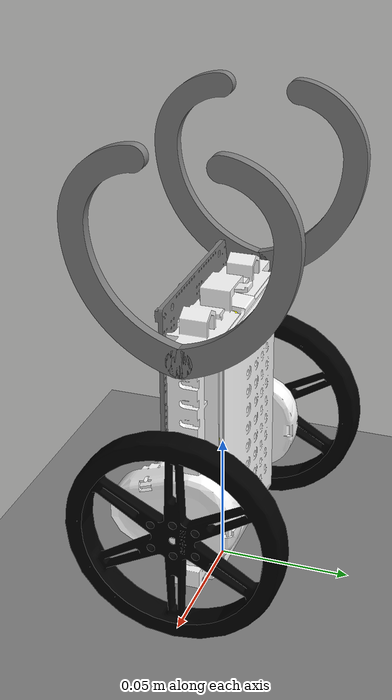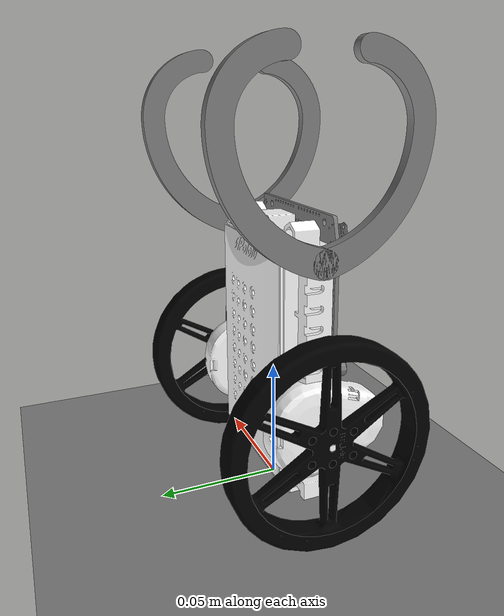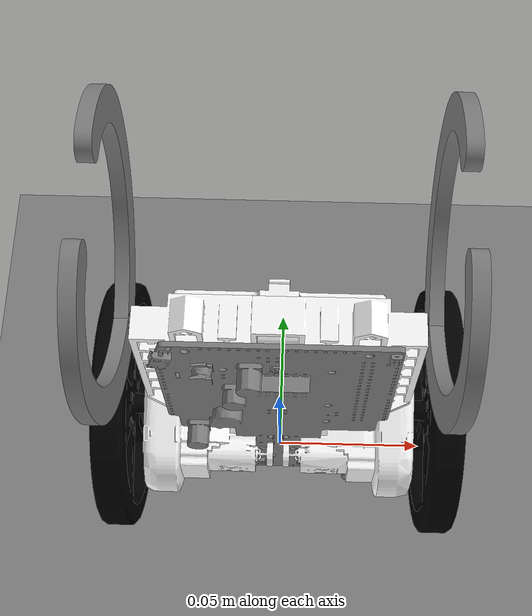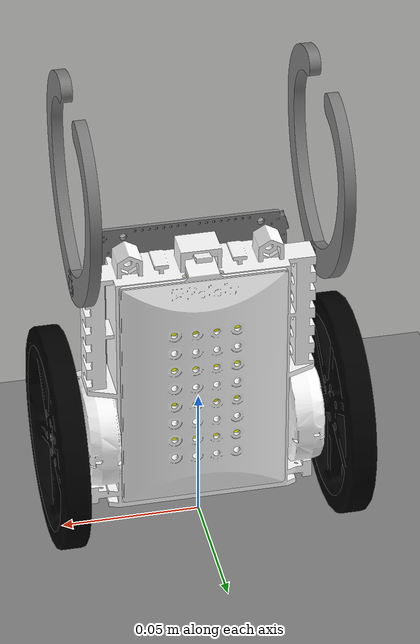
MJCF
<mujoco>
    <compiler meshdir="meshes" />

    <default>
        <mesh scale="0.001 0.001 0.001" />
        <default class="chassis">
            <geom pos="0 0 0" euler="0 0 0" rgba="1 1 1 1" mass="0" />
        </default>
        <default class="bumper">
            <geom  pos="0 0 0" euler="0 0 0" rgba="0.5 0.5 0.5 1" mass="0.00875" />
        </default>
        <default class="batteryA">
            <geom pos="0 0 0" euler="0 -90 0" rgba="1 1 0 1" mass="0.023" />
        </default>
        <default class="batteryB">
            <geom pos="0 0 0" euler="0 90 0" rgba="1 1 0 1" mass="0.023" />
        </default>
        <default class="left_wheel">
            <geom  pos="0 0 0" euler="0 0 0" rgba="0 0 0 1" mass="0.01985" />
        </default>
        <default class="right_wheel">
            <geom  pos="0 0 0" euler="0 0 180" rgba="0 0 0 1" mass="0.01985" />
        </default>
    </default>

    <asset>
        <mesh name="chassis03" file="chassis03.stl" />
        <mesh name="wheel" file="wheel_black.stl" />
        <mesh name="cover" file="battery-cover.stl" />
        <mesh name="cb" file="bal01a01.stl" />
        <mesh name="battery" file="AAbattery.stl" />
        <mesh name="bumper" file="bumper_skid.stl" />
    </asset>

    <!-- Floor -->
    <worldbody>
        <body name="floor">
            <geom name="floor" type="plane" size="1 1 0.001" contype="1" conaffinity="1" friction="2 0.005 0.0001"/>
        </body>
    </worldbody>

    <worldbody>
        <!-- initiate cart origin at height of cart wheel axis -->
        <body name="cart" pos="0 0 0.04" >
            <joint name="cart_free_joint" type="free" />

            <!-- Chassis  -->
            <body name="chassis" pos="0 -0.00972 0.02" euler="90 0 0" >
                <geom name="chassis" type="mesh" class="chassis" mass="0.1003" mesh="chassis03" contype="0" conaffinity="0" />
                <!-- Cart Frame, x-axis aligned with wheel axis, z-axis aligned with pendulum length -->
                <site name="cart_frame" pos="0 -0.02 -0.00972" euler="-90 0 0" type="cylinder" size="0.001 0.001 0.001"/>
            </body>
            <!-- Chassis Cover  -->
            <body name="chassis_cover" pos="0 0.009 0.021" euler="180 0 180" >
                <geom name="chassis_cover" type="mesh" class="chassis" mass="0.005" mesh="cover" contype="0" conaffinity="0" />
            </body>
            <!-- Circuit Board  -->
            <body name="cb" pos="0 -0.00975 0" euler="90 0 0" >
                <geom name="cb" type="mesh" class="chassis" mass="0.020" mesh="cb" contype="0" conaffinity="0" rgba="0.5 0.5 0.5 1"/>
            </body>
            <!-- Bumpers -->
            <body name="bumper1" pos="0.043 0.01 0.11" euler="-90 0 0" >
                <geom name="bumper1" type="mesh" class="bumper" mesh="bumper" contype="1" conaffinity="1"/>
            </body>
            <body name="bumper2" pos="0.043 -0.01 0.11" euler="-90 180 0" >
                <geom name="bumper2" type="mesh" class="bumper" mesh="bumper" contype="1" conaffinity="1"/>
            </body>
            <body name="bumper3" pos="-0.043 0.01 0.11" euler="-90 0 0" >
                <geom name="bumper3" type="mesh" class="bumper" mesh="bumper" contype="1" conaffinity="1"/>
            </body>
            <body name="bumper4" pos="-0.043 -0.01 0.11" euler="-90 180 0" >
                <geom name="bumper4" type="mesh" class="bumper" mesh="bumper" contype="1" conaffinity="1"/>
            </body>
            <!-- Batteries -->
            <body name="battery1" pos="0 0 0.0575" euler="0 0 0" >
                <geom name="battery1" type="mesh" class="batteryA" mesh="battery" contype="0" conaffinity="0" />
            </body>
            <body name="battery2" pos="0 0 0.0425" euler="0 0 0" >
                <geom name="battery2" type="mesh" class="batteryB" mesh="battery" contype="0" conaffinity="0" />
            </body>
            <body name="battery3" pos="0 0 0.0275" euler="0 0 0" >
                <geom name="battery3" type="mesh" class="batteryA" mesh="battery" contype="0" conaffinity="0" />
            </body>
            <body name="battery4" pos="0 0 0.0125" euler="0 0 0" >
                <geom name="battery4" type="mesh" class="batteryB" mesh="battery" contype="0" conaffinity="0" />
            </body>
            <body name="battery5" pos="0 0 -0.0025" euler="0 0 0" >
                <geom name="battery5" type="mesh" class="batteryA" mesh="battery" contype="0" conaffinity="0" />
            </body>
            <body name="battery6" pos="0 0 -0.0175" euler="0 0 0" >
                <geom name="battery6" type="mesh" class="batteryB" mesh="battery" contype="0" conaffinity="0" />
            </body>
            <!-- Wheels -->
            <body name="left_wheel" pos="0.051 0 0">
                <joint name="left_wheel_hinge" type="hinge" axis="1 0 0" pos="0 0 0" damping="0.0069"/>
                <geom name="left_wheel" type="mesh" class="left_wheel" mesh="wheel" contype="0" conaffinity="0" />
                <geom name="left_wheel_collision" type="cylinder" size="0.04 0.005" pos="0 0 0" euler="0 90 0" rgba="1 1 1 0" contype="1" conaffinity="1" friction="2 0.005 0.0001"/>
            </body>
            <body name="right_wheel" pos="-0.051 0 0">
                <joint name="right_wheel_hinge" type="hinge" axis="-1 0 0" pos="0 0 0" damping="0.0069"/>
                <geom name="right_wheel" type="mesh" class="right_wheel" mesh="wheel" contype="0" conaffinity="0" />
                <geom name="right_wheel_collision" type="cylinder" size="0.04 0.005" pos="0 0 0" euler="0 90 0" rgba="1 1 1 0" contype="1" conaffinity="1" friction="2 0.005 0.0001"/>
            </body>

        </body>

    </worldbody>

    <!-- we don't need any equalities right now... but may be useful in the future for the wheel to chassis interface -->

    <actuator>
        <motor joint="left_wheel_hinge" name="left_motor" gear="1" ctrllimited="true" ctrlrange="-5 5"/>
        <motor joint="right_wheel_hinge" name="right_motor" gear="1" ctrllimited="true" ctrlrange="-5 5"/>
    </actuator>
    <sensor>
        <framequat name="cart_quat" objtype="site" objname="cart_frame"/>
        <framepos name="cart_pos" objtype="site" objname="cart_frame"/>
        <!-- Gyro [perfect sensing, noise is input later] -->
        <gyro name="gyro" site="cart_frame" noise="0.001"/>
        <!-- Accelerometer [perfect sensing, noise is input later] -->
        <accelerometer name="accel" site="cart_frame" noise="0.001"/>
        <jointpos name="left_wheel_pos" joint="left_wheel_hinge"/>
        <jointvel name="left_wheel_vel" joint="left_wheel_hinge"/>
        <jointpos name="right_wheel_pos" joint="right_wheel_hinge"/>
        <jointvel name="right_wheel_vel" joint="right_wheel_hinge"/>
    </sensor>

</mujoco>
